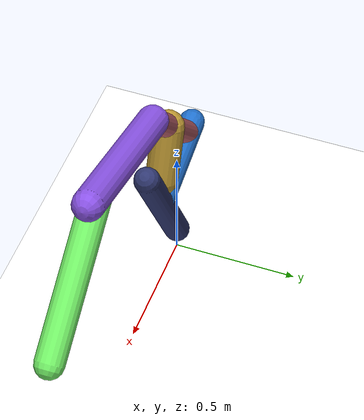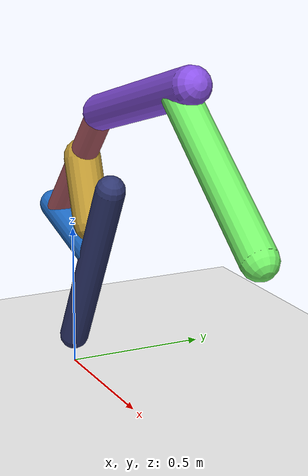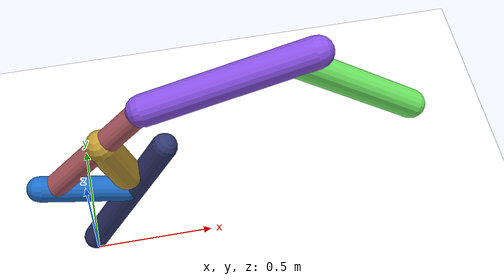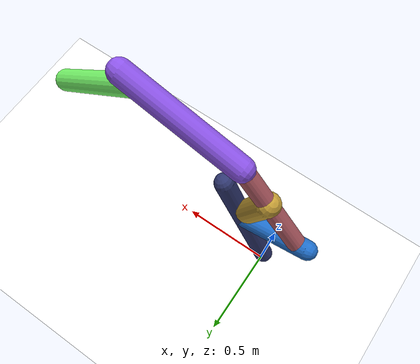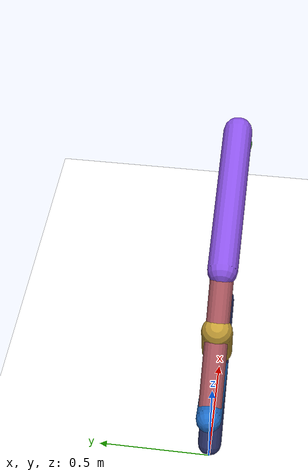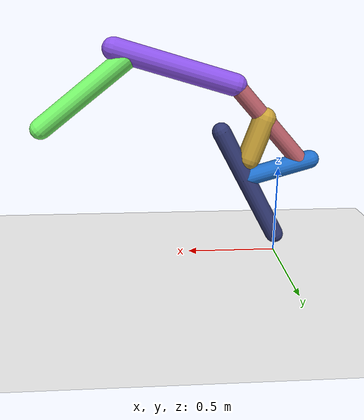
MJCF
<mujoco model="morphology">
  <option timestep="0.01"/>
  <default>
    <default class="/"/>
    <default class="0/"/>
    <default class="0/1/"/>
    <default class="0/1/2/"/>
    <default class="0/1/2/3/"/>
    <default class="0/1/2/4/"/>
    <default class="0/1/2/4/5/"/>
  </default>
  <asset>
    <texture name="texplane" type="2d" builtin="checker" rgb1="0.10000000000000001 0.20000000000000001 0.29999999999999999" rgb2="0.20000000000000001 0.29999999999999999 0.40000000000000002" width="300" height="300"/>
    <material name="MatPlane" class="/" texture="texplane" texrepeat="20 20" specular="1" shininess="1" reflectance="0.5"/>
  </asset>
  <worldbody>
    <light name="//unnamed_light_0" class="/" directional="true" pos="0 0 1.5" dir="0 0 -1.3" cutoff="100" exponent="1" diffuse="1 1 1" specular="0.10000000000000001 0.10000000000000001 0.10000000000000001"/>
    <geom name="ground" class="/" type="plane" size="15 15 0.5" material="MatPlane" rgba="1 1 1 1"/>
    <site name="body" class="/" size="9.9999999999999995e-07 9.9999999999999995e-07 9.9999999999999995e-07" pos="0 0 0.10000000000000001"/>
    <body pos="0 0 0.10000000000000001" name="0/">
      <joint name="0/rootx/" class="/" type="slide" axis="1 0 0" limited="false" stiffness="0" armature="0" damping="0"/>
      <joint name="0/rootz/" class="/" type="slide" axis="0 0 1" limited="false" stiffness="0" armature="0" damping="0"/>
      <joint name="0/rooty/" class="/" type="hinge" axis="0 1 0" limited="false" stiffness="0" armature="0" damping="0"/>
      <geom name="0/geom" class="0/" type="capsule" contype="1" conaffinity="1" condim="3" size="0.051731854185836812" rgba="0.18856218281573323 0.21856116836754924 0.44302996623696478 1" friction="0.59999999999999998 0.10000000000000001 0.10000000000000001" fromto="0 0 0 0.32736417529346751 0 0.61288784429683796"/>
      <site name="0/end0" class="0/" size="0.0050000000000000001" pos="0.32736417529346751 0 0.61288784429683796"/>
      <site name="0/attach1" class="0/" size="9.9999999999999995e-07 9.9999999999999995e-07 9.9999999999999995e-07" pos="0.18553610693124897 0 0.34735879243470147"/>
      <body pos="0.18553610693124897 0 0.34735879243470147" name="0/1/">
        <joint name="0/1/joint/" class="0/" type="hinge" axis="0 1 0" limited="true" range="-53.812582230121777 53.812582230121777"/>
        <geom name="0/1/geom" class="0/1/" type="capsule" contype="1" conaffinity="1" condim="3" size="0.051572849698648136" rgba="0.12162989274173941 0.43178355057885487 0.78882663502779948 1" friction="0.59999999999999998 0.10000000000000001 0.10000000000000001" fromto="0 0 0 -0.35984291511139588 0 0.1030537833931191"/>
        <site name="0/1/end1" class="0/1/" size="0.0050000000000000001" pos="-0.35984291511139588 0 0.1030537833931191"/>
        <site name="0/1/attach2" class="0/1/" size="9.9999999999999995e-07 9.9999999999999995e-07 9.9999999999999995e-07" pos="-0.31124448257462406 0 0.089135898311682393"/>
        <body pos="-0.31124448257462406 0 0.089135898311682393" name="0/1/2/">
          <geom name="0/1/2/geom" class="0/1/2/" type="capsule" contype="1" conaffinity="1" condim="3" size="0.047705597430655042" rgba="0.7066881977294327 0.36164584737428751 0.39628290409207445 1" friction="0.59999999999999998 0.10000000000000001 0.10000000000000001" fromto="0 0 0 0.39442648400661873 0 0.44186208953380302"/>
          <site name="0/1/2/end2" class="0/1/2/" size="0.0050000000000000001" pos="0.39442648400661873 0 0.44186208953380302"/>
          <site name="0/1/2/attach3" class="0/1/2/" size="9.9999999999999995e-07 9.9999999999999995e-07 9.9999999999999995e-07" pos="0.2189749293488896 0 0.2453098961681123"/>
          <body pos="0.2189749293488896 0 0.2453098961681123" name="0/1/2/3/">
            <joint name="0/1/2/3/joint/" class="0/1/2/" type="hinge" axis="0 1 0" limited="true" range="-51.033131788656959 51.033131788656959"/>
            <geom name="0/1/2/3/geom" class="0/1/2/3/" type="capsule" contype="1" conaffinity="1" condim="3" size="0.06399919735159379" rgba="0.77288893532251857 0.62061866829279755 0.20972729459438277 1" friction="0.59999999999999998 0.10000000000000001 0.10000000000000001" fromto="0 0 0 0.077011347009542597 0 -0.21943817590721959"/>
            <site name="0/1/2/3/end3" class="0/1/2/3/" size="0.0050000000000000001" pos="0.077011347009542597 0 -0.21943817590721959"/>
          </body>
          <site name="0/1/2/attach4" class="0/1/2/" size="9.9999999999999995e-07 9.9999999999999995e-07 9.9999999999999995e-07" pos="0.3828854723286878 0 0.42893310088288117"/>
          <body pos="0.3828854723286878 0 0.42893310088288117" name="0/1/2/4/">
            <joint name="0/1/2/4/joint/" class="0/1/2/" type="hinge" axis="0 1 0" limited="true" range="-61.490129646392688 61.490129646392688"/>
            <geom name="0/1/2/4/geom" class="0/1/2/4/" type="capsule" contype="1" conaffinity="1" condim="3" size="0.061378613261316675" rgba="0.53832824459901363 0.32323604739929523 0.89756006297975732 1" friction="0.59999999999999998 0.10000000000000001 0.10000000000000001" fromto="0 0 0 0.63726455494208079 0 0.18810393818841398"/>
            <site name="0/1/2/4/end4" class="0/1/2/4/" size="0.0050000000000000001" pos="0.63726455494208079 0 0.18810393818841398"/>
            <site name="0/1/2/4/attach5" class="0/1/2/4/" size="9.9999999999999995e-07 9.9999999999999995e-07 9.9999999999999995e-07" pos="0.54730863499103788 0 0.16155128799795926"/>
            <body pos="0.54730863499103788 0 0.16155128799795926" name="0/1/2/4/5/">
              <joint name="0/1/2/4/5/joint/" class="0/1/2/4/" type="hinge" axis="0 1 0" limited="true" range="-63.497233756961144 63.497233756961144"/>
              <geom name="0/1/2/4/5/geom" class="0/1/2/4/5/" type="capsule" contype="1" conaffinity="1" condim="3" size="0.057023039249825339" rgba="0.46338762414952372 0.96506966701414876 0.41375893453563972 1" friction="0.59999999999999998 0.10000000000000001 0.10000000000000001" fromto="0 0 0 0.49420647680237195 0 -0.38752859829070085"/>
              <site name="0/1/2/4/5/end5" class="0/1/2/4/5/" size="0.0050000000000000001" pos="0.49420647680237195 0 -0.38752859829070085"/>
            </body>
          </body>
        </body>
      </body>
      <camera name="0/side" class="0/" mode="trackcom" pos="0.40000000000000002 -4 0.20000000000000001" quat="0.70699999999999996 0.70699999999999996 0 0"/>
    </body>
  </worldbody>
  <actuator>
    <motor name="0/1/motor" class="0/1/" ctrllimited="true" ctrlrange="-1 1" gear="51" joint="0/1/joint/"/>
    <motor name="0/1/2/3/motor" class="0/1/2/3/" ctrllimited="true" ctrlrange="-1 1" gear="69" joint="0/1/2/3/joint/"/>
    <motor name="0/1/2/4/motor" class="0/1/2/4/" ctrllimited="true" ctrlrange="-1 1" gear="63" joint="0/1/2/4/joint/"/>
    <motor name="0/1/2/4/5/motor" class="0/1/2/4/5/" ctrllimited="true" ctrlrange="-1 1" gear="67" joint="0/1/2/4/5/joint/"/>
  </actuator>
  <sensor>
    <subtreelinvel name="velocity" body="0/"/>
  </sensor>
</mujoco>
